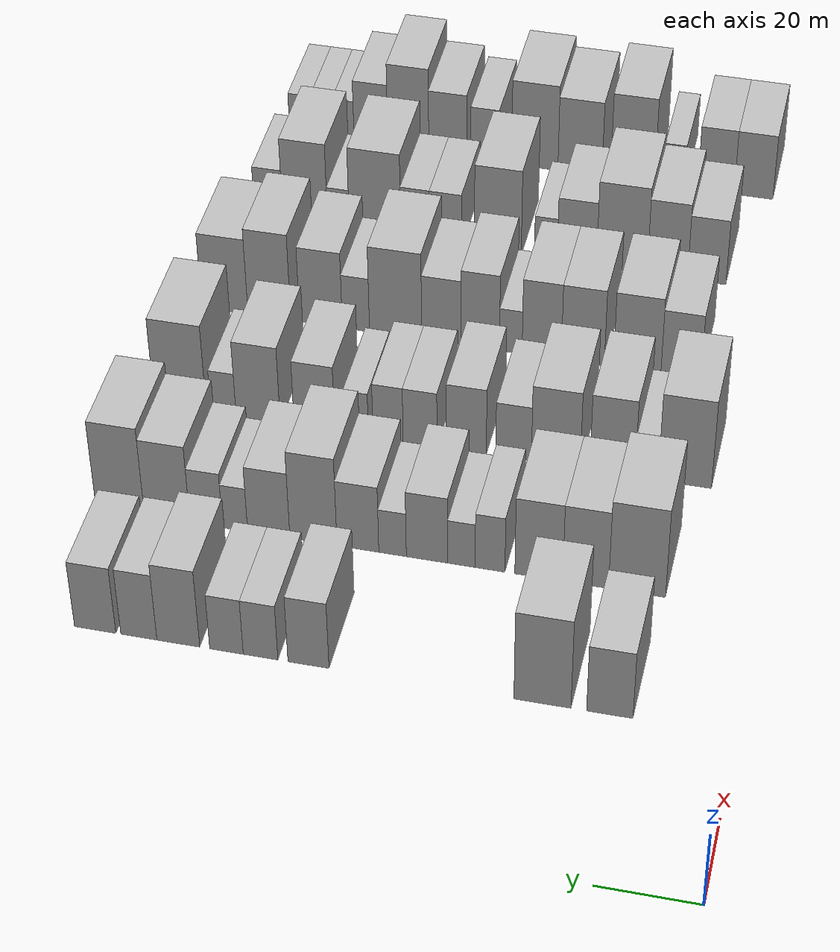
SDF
<sdf version="1.6">
 <world name="default">
  <model name="building_58">
   <static>1</static>
   <pose>50.0000 24.0902 0 0.000000 0.000000 0.000000</pose>
   <link name="link">
    <pose>0 0 9.00 0 0 0</pose>
    <collision name="collision"><geometry><box><size>20.0000 8.8738 18.0000</size></box></geometry></collision>
    <visual name="visual">
     <cast_shadows>0</cast_shadows>
     <geometry><box><size>20.0000 8.8738 18.0000</size></box></geometry>
     <material>
      <script>
       <uri>model://HANNAS_wall/materials/scripts</uri>
       <uri>model://HANNAS_wall/materials/textures</uri>
       <name>vrc/HANNAS_wall</name>
      </script>
     </material>
    </visual>
   </link>
  </model>
  <model name="building_59">
   <static>1</static>
   <pose>50.0000 37.0225 0 0.000000 0.000000 0.000000</pose>
   <link name="link">
    <pose>0 0 12.00 0 0 0</pose>
    <collision name="collision"><geometry><box><size>20.0000 10.9907 24.0000</size></box></geometry></collision>
    <visual name="visual">
     <cast_shadows>0</cast_shadows>
     <geometry><box><size>20.0000 10.9907 24.0000</size></box></geometry>
     <material>
      <script>
       <uri>model://HANNAS_wall/materials/scripts</uri>
       <uri>model://HANNAS_wall/materials/textures</uri>
       <name>vrc/HANNAS_wall</name>
      </script>
     </material>
    </visual>
   </link>
  </model>
  <model name="building_60">
   <static>1</static>
   <pose>50.0000 82.7007 0 0.000000 0.000000 0.000000</pose>
   <link name="link">
    <pose>0 0 9.00 0 0 0</pose>
    <collision name="collision"><geometry><box><size>20.0000 8.1219 18.0000</size></box></geometry></collision>
    <visual name="visual">
     <cast_shadows>0</cast_shadows>
     <geometry><box><size>20.0000 8.1219 18.0000</size></box></geometry>
     <material>
      <script>
       <uri>model://HANNAS_wall/materials/scripts</uri>
       <uri>model://HANNAS_wall/materials/textures</uri>
       <name>vrc/HANNAS_wall</name>
      </script>
     </material>
    </visual>
   </link>
  </model>
  <model name="building_61">
   <static>1</static>
   <pose>50.0000 92.2051 0 0.000000 0.000000 0.000000</pose>
   <link name="link">
    <pose>0 0 7.50 0 0 0</pose>
    <collision name="collision"><geometry><box><size>20.0000 6.8869 15.0000</size></box></geometry></collision>
    <visual name="visual">
     <cast_shadows>0</cast_shadows>
     <geometry><box><size>20.0000 6.8869 15.0000</size></box></geometry>
     <material>
      <script>
       <uri>model://HANNAS_wall/materials/scripts</uri>
       <uri>model://HANNAS_wall/materials/textures</uri>
       <name>vrc/HANNAS_wall</name>
      </script>
     </material>
    </visual>
   </link>
  </model>
  <model name="building_62">
   <static>1</static>
   <pose>50.0000 98.9948 0 0.000000 0.000000 0.000000</pose>
   <link name="link">
    <pose>0 0 7.50 0 0 0</pose>
    <collision name="collision"><geometry><box><size>20.0000 6.6925 15.0000</size></box></geometry></collision>
    <visual name="visual">
     <cast_shadows>0</cast_shadows>
     <geometry><box><size>20.0000 6.6925 15.0000</size></box></geometry>
     <material>
      <script>
       <uri>model://HANNAS_wall/materials/scripts</uri>
       <uri>model://HANNAS_wall/materials/textures</uri>
       <name>vrc/HANNAS_wall</name>
      </script>
     </material>
    </visual>
   </link>
  </model>
  <model name="building_63">
   <static>1</static>
   <pose>50.0000 108.6444 0 0.000000 0.000000 0.000000</pose>
   <link name="link">
    <pose>0 0 10.50 0 0 0</pose>
    <collision name="collision"><geometry><box><size>20.0000 8.6068 21.0000</size></box></geometry></collision>
    <visual name="visual">
     <cast_shadows>0</cast_shadows>
     <geometry><box><size>20.0000 8.6068 21.0000</size></box></geometry>
     <material>
      <script>
       <uri>model://HANNAS_wall/materials/scripts</uri>
       <uri>model://HANNAS_wall/materials/textures</uri>
       <name>vrc/HANNAS_wall</name>
      </script>
     </material>
    </visual>
   </link>
  </model>
  <model name="building_64">
   <static>1</static>
   <pose>50.0000 116.5940 0 0.000000 0.000000 0.000000</pose>
   <link name="link">
    <pose>0 0 9.00 0 0 0</pose>
    <collision name="collision"><geometry><box><size>20.0000 7.2923 18.0000</size></box></geometry></collision>
    <visual name="visual">
     <cast_shadows>0</cast_shadows>
     <geometry><box><size>20.0000 7.2923 18.0000</size></box></geometry>
     <material>
      <script>
       <uri>model://HANNAS_wall/materials/scripts</uri>
       <uri>model://HANNAS_wall/materials/textures</uri>
       <name>vrc/HANNAS_wall</name>
      </script>
     </material>
    </visual>
   </link>
  </model>
  <model name="building_65">
   <static>1</static>
   <pose>50.0000 125.4271 0 0.000000 0.000000 0.000000</pose>
   <link name="link">
    <pose>0 0 9.00 0 0 0</pose>
    <collision name="collision"><geometry><box><size>20.0000 8.3741 18.0000</size></box></geometry></collision>
    <visual name="visual">
     <cast_shadows>0</cast_shadows>
     <geometry><box><size>20.0000 8.3741 18.0000</size></box></geometry>
     <material>
      <script>
       <uri>model://HANNAS_wall/materials/scripts</uri>
       <uri>model://HANNAS_wall/materials/textures</uri>
       <name>vrc/HANNAS_wall</name>
      </script>
     </material>
    </visual>
   </link>
  </model>
  <model name="building_174">
   <static>1</static>
   <pose>82.0000 24.3440 0 0.000000 0.000000 0.000000</pose>
   <link name="link">
    <pose>0 0 12.00 0 0 0</pose>
    <collision name="collision"><geometry><box><size>20.0000 11.3569 24.0000</size></box></geometry></collision>
    <visual name="visual">
     <cast_shadows>0</cast_shadows>
     <geometry><box><size>20.0000 11.3569 24.0000</size></box></geometry>
     <material>
      <script>
       <uri>model://HANNAS_wall/materials/scripts</uri>
       <uri>model://HANNAS_wall/materials/textures</uri>
       <name>vrc/HANNAS_wall</name>
      </script>
     </material>
    </visual>
   </link>
  </model>
  <model name="building_175">
   <static>1</static>
   <pose>82.0000 34.6064 0 0.000000 0.000000 0.000000</pose>
   <link name="link">
    <pose>0 0 10.50 0 0 0</pose>
    <collision name="collision"><geometry><box><size>20.0000 9.1680 21.0000</size></box></geometry></collision>
    <visual name="visual">
     <cast_shadows>0</cast_shadows>
     <geometry><box><size>20.0000 9.1680 21.0000</size></box></geometry>
     <material>
      <script>
       <uri>model://HANNAS_wall/materials/scripts</uri>
       <uri>model://HANNAS_wall/materials/textures</uri>
       <name>vrc/HANNAS_wall</name>
      </script>
     </material>
    </visual>
   </link>
  </model>
  <model name="building_176">
   <static>1</static>
   <pose>82.0000 44.0132 0 0.000000 0.000000 0.000000</pose>
   <link name="link">
    <pose>0 0 10.50 0 0 0</pose>
    <collision name="collision"><geometry><box><size>20.0000 9.6455 21.0000</size></box></geometry></collision>
    <visual name="visual">
     <cast_shadows>0</cast_shadows>
     <geometry><box><size>20.0000 9.6455 21.0000</size></box></geometry>
     <material>
      <script>
       <uri>model://HANNAS_wall/materials/scripts</uri>
       <uri>model://HANNAS_wall/materials/textures</uri>
       <name>vrc/HANNAS_wall</name>
      </script>
     </material>
    </visual>
   </link>
  </model>
  <model name="building_177">
   <static>1</static>
   <pose>82.0000 53.8395 0 0.000000 0.000000 0.000000</pose>
   <link name="link">
    <pose>0 0 7.50 0 0 0</pose>
    <collision name="collision"><geometry><box><size>20.0000 6.0071 15.0000</size></box></geometry></collision>
    <visual name="visual">
     <cast_shadows>0</cast_shadows>
     <geometry><box><size>20.0000 6.0071 15.0000</size></box></geometry>
     <material>
      <script>
       <uri>model://HANNAS_wall/materials/scripts</uri>
       <uri>model://HANNAS_wall/materials/textures</uri>
       <name>vrc/HANNAS_wall</name>
      </script>
     </material>
    </visual>
   </link>
  </model>
  <model name="building_178">
   <static>1</static>
   <pose>82.0000 59.6464 0 0.000000 0.000000 0.000000</pose>
   <link name="link">
    <pose>0 0 6.00 0 0 0</pose>
    <collision name="collision"><geometry><box><size>20.0000 5.6066 12.0000</size></box></geometry></collision>
    <visual name="visual">
     <cast_shadows>0</cast_shadows>
     <geometry><box><size>20.0000 5.6066 12.0000</size></box></geometry>
     <material>
      <script>
       <uri>model://HANNAS_wall/materials/scripts</uri>
       <uri>model://HANNAS_wall/materials/textures</uri>
       <name>vrc/HANNAS_wall</name>
      </script>
     </material>
    </visual>
   </link>
  </model>
  <model name="building_179">
   <static>1</static>
   <pose>82.0000 66.6691 0 0.000000 0.000000 0.000000</pose>
   <link name="link">
    <pose>0 0 9.00 0 0 0</pose>
    <collision name="collision"><geometry><box><size>20.0000 8.4389 18.0000</size></box></geometry></collision>
    <visual name="visual">
     <cast_shadows>0</cast_shadows>
     <geometry><box><size>20.0000 8.4389 18.0000</size></box></geometry>
     <material>
      <script>
       <uri>model://HANNAS_wall/materials/scripts</uri>
       <uri>model://HANNAS_wall/materials/textures</uri>
       <name>vrc/HANNAS_wall</name>
      </script>
     </material>
    </visual>
   </link>
  </model>
  <model name="building_180">
   <static>1</static>
   <pose>82.0000 73.7077 0 0.000000 0.000000 0.000000</pose>
   <link name="link">
    <pose>0 0 6.00 0 0 0</pose>
    <collision name="collision"><geometry><box><size>20.0000 5.6383 12.0000</size></box></geometry></collision>
    <visual name="visual">
     <cast_shadows>0</cast_shadows>
     <geometry><box><size>20.0000 5.6383 12.0000</size></box></geometry>
     <material>
      <script>
       <uri>model://HANNAS_wall/materials/scripts</uri>
       <uri>model://HANNAS_wall/materials/textures</uri>
       <name>vrc/HANNAS_wall</name>
      </script>
     </material>
    </visual>
   </link>
  </model>
  <model name="building_181">
   <static>1</static>
   <pose>82.0000 80.8199 0 0.000000 0.000000 0.000000</pose>
   <link name="link">
    <pose>0 0 9.00 0 0 0</pose>
    <collision name="collision"><geometry><box><size>20.0000 8.5862 18.0000</size></box></geometry></collision>
    <visual name="visual">
     <cast_shadows>0</cast_shadows>
     <geometry><box><size>20.0000 8.5862 18.0000</size></box></geometry>
     <material>
      <script>
       <uri>model://HANNAS_wall/materials/scripts</uri>
       <uri>model://HANNAS_wall/materials/textures</uri>
       <name>vrc/HANNAS_wall</name>
      </script>
     </material>
    </visual>
   </link>
  </model>
  <model name="building_182">
   <static>1</static>
   <pose>82.0000 89.9859 0 0.000000 0.000000 0.000000</pose>
   <link name="link">
    <pose>0 0 12.00 0 0 0</pose>
    <collision name="collision"><geometry><box><size>20.0000 9.7458 24.0000</size></box></geometry></collision>
    <visual name="visual">
     <cast_shadows>0</cast_shadows>
     <geometry><box><size>20.0000 9.7458 24.0000</size></box></geometry>
     <material>
      <script>
       <uri>model://HANNAS_wall/materials/scripts</uri>
       <uri>model://HANNAS_wall/materials/textures</uri>
       <name>vrc/HANNAS_wall</name>
      </script>
     </material>
    </visual>
   </link>
  </model>
  <model name="building_183">
   <static>1</static>
   <pose>82.0000 99.2444 0 0.000000 0.000000 0.000000</pose>
   <link name="link">
    <pose>0 0 9.00 0 0 0</pose>
    <collision name="collision"><geometry><box><size>20.0000 8.7712 18.0000</size></box></geometry></collision>
    <visual name="visual">
     <cast_shadows>0</cast_shadows>
     <geometry><box><size>20.0000 8.7712 18.0000</size></box></geometry>
     <material>
      <script>
       <uri>model://HANNAS_wall/materials/scripts</uri>
       <uri>model://HANNAS_wall/materials/textures</uri>
       <name>vrc/HANNAS_wall</name>
      </script>
     </material>
    </visual>
   </link>
  </model>
  <model name="building_184">
   <static>1</static>
   <pose>82.0000 106.2333 0 0.000000 0.000000 0.000000</pose>
   <link name="link">
    <pose>0 0 6.00 0 0 0</pose>
    <collision name="collision"><geometry><box><size>20.0000 5.2065 12.0000</size></box></geometry></collision>
    <visual name="visual">
     <cast_shadows>0</cast_shadows>
     <geometry><box><size>20.0000 5.2065 12.0000</size></box></geometry>
     <material>
      <script>
       <uri>model://HANNAS_wall/materials/scripts</uri>
       <uri>model://HANNAS_wall/materials/textures</uri>
       <name>vrc/HANNAS_wall</name>
      </script>
     </material>
    </visual>
   </link>
  </model>
  <model name="building_185">
   <static>1</static>
   <pose>82.0000 112.2573 0 0.000000 0.000000 0.000000</pose>
   <link name="link">
    <pose>0 0 7.50 0 0 0</pose>
    <collision name="collision"><geometry><box><size>20.0000 6.8416 15.0000</size></box></geometry></collision>
    <visual name="visual">
     <cast_shadows>0</cast_shadows>
     <geometry><box><size>20.0000 6.8416 15.0000</size></box></geometry>
     <material>
      <script>
       <uri>model://HANNAS_wall/materials/scripts</uri>
       <uri>model://HANNAS_wall/materials/textures</uri>
       <name>vrc/HANNAS_wall</name>
      </script>
     </material>
    </visual>
   </link>
  </model>
  <model name="building_186">
   <static>1</static>
   <pose>82.0000 120.4672 0 0.000000 0.000000 0.000000</pose>
   <link name="link">
    <pose>0 0 10.50 0 0 0</pose>
    <collision name="collision"><geometry><box><size>20.0000 9.5781 21.0000</size></box></geometry></collision>
    <visual name="visual">
     <cast_shadows>0</cast_shadows>
     <geometry><box><size>20.0000 9.5781 21.0000</size></box></geometry>
     <material>
      <script>
       <uri>model://HANNAS_wall/materials/scripts</uri>
       <uri>model://HANNAS_wall/materials/textures</uri>
       <name>vrc/HANNAS_wall</name>
      </script>
     </material>
    </visual>
   </link>
  </model>
  <model name="building_187">
   <static>1</static>
   <pose>82.0000 130.3762 0 0.000000 0.000000 0.000000</pose>
   <link name="link">
    <pose>0 0 12.00 0 0 0</pose>
    <collision name="collision"><geometry><box><size>20.0000 10.2400 24.0000</size></box></geometry></collision>
    <visual name="visual">
     <cast_shadows>0</cast_shadows>
     <geometry><box><size>20.0000 10.2400 24.0000</size></box></geometry>
     <material>
      <script>
       <uri>model://HANNAS_wall/materials/scripts</uri>
       <uri>model://HANNAS_wall/materials/textures</uri>
       <name>vrc/HANNAS_wall</name>
      </script>
     </material>
    </visual>
   </link>
  </model>
  <model name="building_295">
   <static>1</static>
   <pose>114.0000 19.8842 0 0.000000 0.000000 0.000000</pose>
   <link name="link">
    <pose>0 0 12.00 0 0 0</pose>
    <collision name="collision"><geometry><box><size>20.0000 11.0439 24.0000</size></box></geometry></collision>
    <visual name="visual">
     <cast_shadows>0</cast_shadows>
     <geometry><box><size>20.0000 11.0439 24.0000</size></box></geometry>
     <material>
      <script>
       <uri>model://HANNAS_wall/materials/scripts</uri>
       <uri>model://HANNAS_wall/materials/textures</uri>
       <name>vrc/HANNAS_wall</name>
      </script>
     </material>
    </visual>
   </link>
  </model>
  <model name="building_296">
   <static>1</static>
   <pose>114.0000 27.8143 0 0.000000 0.000000 0.000000</pose>
   <link name="link">
    <pose>0 0 6.00 0 0 0</pose>
    <collision name="collision"><geometry><box><size>20.0000 4.8162 12.0000</size></box></geometry></collision>
    <visual name="visual">
     <cast_shadows>0</cast_shadows>
     <geometry><box><size>20.0000 4.8162 12.0000</size></box></geometry>
     <material>
      <script>
       <uri>model://HANNAS_wall/materials/scripts</uri>
       <uri>model://HANNAS_wall/materials/textures</uri>
       <name>vrc/HANNAS_wall</name>
      </script>
     </material>
    </visual>
   </link>
  </model>
  <model name="building_297">
   <static>1</static>
   <pose>114.0000 34.9169 0 0.000000 0.000000 0.000000</pose>
   <link name="link">
    <pose>0 0 10.50 0 0 0</pose>
    <collision name="collision"><geometry><box><size>20.0000 9.3890 21.0000</size></box></geometry></collision>
    <visual name="visual">
     <cast_shadows>0</cast_shadows>
     <geometry><box><size>20.0000 9.3890 21.0000</size></box></geometry>
     <material>
      <script>
       <uri>model://HANNAS_wall/materials/scripts</uri>
       <uri>model://HANNAS_wall/materials/textures</uri>
       <name>vrc/HANNAS_wall</name>
      </script>
     </material>
    </visual>
   </link>
  </model>
  <model name="building_298">
   <static>1</static>
   <pose>114.0000 46.7356 0 0.000000 0.000000 0.000000</pose>
   <link name="link">
    <pose>0 0 10.50 0 0 0</pose>
    <collision name="collision"><geometry><box><size>20.0000 10.2484 21.0000</size></box></geometry></collision>
    <visual name="visual">
     <cast_shadows>0</cast_shadows>
     <geometry><box><size>20.0000 10.2484 21.0000</size></box></geometry>
     <material>
      <script>
       <uri>model://HANNAS_wall/materials/scripts</uri>
       <uri>model://HANNAS_wall/materials/textures</uri>
       <name>vrc/HANNAS_wall</name>
      </script>
     </material>
    </visual>
   </link>
  </model>
  <model name="building_299">
   <static>1</static>
   <pose>114.0000 55.5997 0 0.000000 0.000000 0.000000</pose>
   <link name="link">
    <pose>0 0 7.50 0 0 0</pose>
    <collision name="collision"><geometry><box><size>20.0000 7.4797 15.0000</size></box></geometry></collision>
    <visual name="visual">
     <cast_shadows>0</cast_shadows>
     <geometry><box><size>20.0000 7.4797 15.0000</size></box></geometry>
     <material>
      <script>
       <uri>model://HANNAS_wall/materials/scripts</uri>
       <uri>model://HANNAS_wall/materials/textures</uri>
       <name>vrc/HANNAS_wall</name>
      </script>
     </material>
    </visual>
   </link>
  </model>
  <model name="building_300">
   <static>1</static>
   <pose>114.0000 65.5620 0 0.000000 0.000000 0.000000</pose>
   <link name="link">
    <pose>0 0 9.00 0 0 0</pose>
    <collision name="collision"><geometry><box><size>20.0000 8.4450 18.0000</size></box></geometry></collision>
    <visual name="visual">
     <cast_shadows>0</cast_shadows>
     <geometry><box><size>20.0000 8.4450 18.0000</size></box></geometry>
     <material>
      <script>
       <uri>model://HANNAS_wall/materials/scripts</uri>
       <uri>model://HANNAS_wall/materials/textures</uri>
       <name>vrc/HANNAS_wall</name>
      </script>
     </material>
    </visual>
   </link>
  </model>
  <model name="building_301">
   <static>1</static>
   <pose>114.0000 75.3989 0 0.000000 0.000000 0.000000</pose>
   <link name="link">
    <pose>0 0 7.50 0 0 0</pose>
    <collision name="collision"><geometry><box><size>20.0000 7.2289 15.0000</size></box></geometry></collision>
    <visual name="visual">
     <cast_shadows>0</cast_shadows>
     <geometry><box><size>20.0000 7.2289 15.0000</size></box></geometry>
     <material>
      <script>
       <uri>model://HANNAS_wall/materials/scripts</uri>
       <uri>model://HANNAS_wall/materials/textures</uri>
       <name>vrc/HANNAS_wall</name>
      </script>
     </material>
    </visual>
   </link>
  </model>
  <model name="building_302">
   <static>1</static>
   <pose>114.0000 82.2269 0 0.000000 0.000000 0.000000</pose>
   <link name="link">
    <pose>0 0 7.50 0 0 0</pose>
    <collision name="collision"><geometry><box><size>20.0000 6.4271 15.0000</size></box></geometry></collision>
    <visual name="visual">
     <cast_shadows>0</cast_shadows>
     <geometry><box><size>20.0000 6.4271 15.0000</size></box></geometry>
     <material>
      <script>
       <uri>model://HANNAS_wall/materials/scripts</uri>
       <uri>model://HANNAS_wall/materials/textures</uri>
       <name>vrc/HANNAS_wall</name>
      </script>
     </material>
    </visual>
   </link>
  </model>
  <model name="building_303">
   <static>1</static>
   <pose>114.0000 89.0508 0 0.000000 0.000000 0.000000</pose>
   <link name="link">
    <pose>0 0 6.00 0 0 0</pose>
    <collision name="collision"><geometry><box><size>20.0000 5.2206 12.0000</size></box></geometry></collision>
    <visual name="visual">
     <cast_shadows>0</cast_shadows>
     <geometry><box><size>20.0000 5.2206 12.0000</size></box></geometry>
     <material>
      <script>
       <uri>model://HANNAS_wall/materials/scripts</uri>
       <uri>model://HANNAS_wall/materials/textures</uri>
       <name>vrc/HANNAS_wall</name>
      </script>
     </material>
    </visual>
   </link>
  </model>
  <model name="building_304">
   <static>1</static>
   <pose>114.0000 98.0359 0 0.000000 0.000000 0.000000</pose>
   <link name="link">
    <pose>0 0 9.00 0 0 0</pose>
    <collision name="collision"><geometry><box><size>20.0000 8.7498 18.0000</size></box></geometry></collision>
    <visual name="visual">
     <cast_shadows>0</cast_shadows>
     <geometry><box><size>20.0000 8.7498 18.0000</size></box></geometry>
     <material>
      <script>
       <uri>model://HANNAS_wall/materials/scripts</uri>
       <uri>model://HANNAS_wall/materials/textures</uri>
       <name>vrc/HANNAS_wall</name>
      </script>
     </material>
    </visual>
   </link>
  </model>
  <model name="building_305">
   <static>1</static>
   <pose>114.0000 110.1996 0 0.000000 0.000000 0.000000</pose>
   <link name="link">
    <pose>0 0 10.50 0 0 0</pose>
    <collision name="collision"><geometry><box><size>20.0000 9.5776 21.0000</size></box></geometry></collision>
    <visual name="visual">
     <cast_shadows>0</cast_shadows>
     <geometry><box><size>20.0000 9.5776 21.0000</size></box></geometry>
     <material>
      <script>
       <uri>model://HANNAS_wall/materials/scripts</uri>
       <uri>model://HANNAS_wall/materials/textures</uri>
       <name>vrc/HANNAS_wall</name>
      </script>
     </material>
    </visual>
   </link>
  </model>
  <model name="building_306">
   <static>1</static>
   <pose>114.0000 117.7219 0 0.000000 0.000000 0.000000</pose>
   <link name="link">
    <pose>0 0 6.00 0 0 0</pose>
    <collision name="collision"><geometry><box><size>20.0000 5.4670 12.0000</size></box></geometry></collision>
    <visual name="visual">
     <cast_shadows>0</cast_shadows>
     <geometry><box><size>20.0000 5.4670 12.0000</size></box></geometry>
     <material>
      <script>
       <uri>model://HANNAS_wall/materials/scripts</uri>
       <uri>model://HANNAS_wall/materials/textures</uri>
       <name>vrc/HANNAS_wall</name>
      </script>
     </material>
    </visual>
   </link>
  </model>
  <model name="building_307">
   <static>1</static>
   <pose>114.0000 127.1397 0 0.000000 0.000000 0.000000</pose>
   <link name="link">
    <pose>0 0 12.00 0 0 0</pose>
    <collision name="collision"><geometry><box><size>20.0000 11.3685 24.0000</size></box></geometry></collision>
    <visual name="visual">
     <cast_shadows>0</cast_shadows>
     <geometry><box><size>20.0000 11.3685 24.0000</size></box></geometry>
     <material>
      <script>
       <uri>model://HANNAS_wall/materials/scripts</uri>
       <uri>model://HANNAS_wall/materials/textures</uri>
       <name>vrc/HANNAS_wall</name>
      </script>
     </material>
    </visual>
   </link>
  </model>
  <model name="building_409">
   <static>1</static>
   <pose>146.0000 25.7599 0 0.000000 0.000000 0.000000</pose>
   <link name="link">
    <pose>0 0 9.00 0 0 0</pose>
    <collision name="collision"><geometry><box><size>20.0000 8.6077 18.0000</size></box></geometry></collision>
    <visual name="visual">
     <cast_shadows>0</cast_shadows>
     <geometry><box><size>20.0000 8.6077 18.0000</size></box></geometry>
     <material>
      <script>
       <uri>model://HANNAS_wall/materials/scripts</uri>
       <uri>model://HANNAS_wall/materials/textures</uri>
       <name>vrc/HANNAS_wall</name>
      </script>
     </material>
    </visual>
   </link>
  </model>
  <model name="building_410">
   <static>1</static>
   <pose>146.0000 35.1900 0 0.000000 0.000000 0.000000</pose>
   <link name="link">
    <pose>0 0 10.50 0 0 0</pose>
    <collision name="collision"><geometry><box><size>20.0000 10.2526 21.0000</size></box></geometry></collision>
    <visual name="visual">
     <cast_shadows>0</cast_shadows>
     <geometry><box><size>20.0000 10.2526 21.0000</size></box></geometry>
     <material>
      <script>
       <uri>model://HANNAS_wall/materials/scripts</uri>
       <uri>model://HANNAS_wall/materials/textures</uri>
       <name>vrc/HANNAS_wall</name>
      </script>
     </material>
    </visual>
   </link>
  </model>
  <model name="building_411">
   <static>1</static>
   <pose>146.0000 46.9946 0 0.000000 0.000000 0.000000</pose>
   <link name="link">
    <pose>0 0 10.50 0 0 0</pose>
    <collision name="collision"><geometry><box><size>20.0000 9.3565 21.0000</size></box></geometry></collision>
    <visual name="visual">
     <cast_shadows>0</cast_shadows>
     <geometry><box><size>20.0000 9.3565 21.0000</size></box></geometry>
     <material>
      <script>
       <uri>model://HANNAS_wall/materials/scripts</uri>
       <uri>model://HANNAS_wall/materials/textures</uri>
       <name>vrc/HANNAS_wall</name>
      </script>
     </material>
    </visual>
   </link>
  </model>
  <model name="building_412">
   <static>1</static>
   <pose>146.0000 55.9600 0 0.000000 0.000000 0.000000</pose>
   <link name="link">
    <pose>0 0 10.50 0 0 0</pose>
    <collision name="collision"><geometry><box><size>20.0000 8.5743 21.0000</size></box></geometry></collision>
    <visual name="visual">
     <cast_shadows>0</cast_shadows>
     <geometry><box><size>20.0000 8.5743 21.0000</size></box></geometry>
     <material>
      <script>
       <uri>model://HANNAS_wall/materials/scripts</uri>
       <uri>model://HANNAS_wall/materials/textures</uri>
       <name>vrc/HANNAS_wall</name>
      </script>
     </material>
    </visual>
   </link>
  </model>
  <model name="building_413">
   <static>1</static>
   <pose>146.0000 62.7259 0 0.000000 0.000000 0.000000</pose>
   <link name="link">
    <pose>0 0 6.00 0 0 0</pose>
    <collision name="collision"><geometry><box><size>20.0000 4.9575 12.0000</size></box></geometry></collision>
    <visual name="visual">
     <cast_shadows>0</cast_shadows>
     <geometry><box><size>20.0000 4.9575 12.0000</size></box></geometry>
     <material>
      <script>
       <uri>model://HANNAS_wall/materials/scripts</uri>
       <uri>model://HANNAS_wall/materials/textures</uri>
       <name>vrc/HANNAS_wall</name>
      </script>
     </material>
    </visual>
   </link>
  </model>
  <model name="building_414">
   <static>1</static>
   <pose>146.0000 69.4412 0 0.000000 0.000000 0.000000</pose>
   <link name="link">
    <pose>0 0 10.50 0 0 0</pose>
    <collision name="collision"><geometry><box><size>20.0000 8.4731 21.0000</size></box></geometry></collision>
    <visual name="visual">
     <cast_shadows>0</cast_shadows>
     <geometry><box><size>20.0000 8.4731 21.0000</size></box></geometry>
     <material>
      <script>
       <uri>model://HANNAS_wall/materials/scripts</uri>
       <uri>model://HANNAS_wall/materials/textures</uri>
       <name>vrc/HANNAS_wall</name>
      </script>
     </material>
    </visual>
   </link>
  </model>
  <model name="building_415">
   <static>1</static>
   <pose>146.0000 78.0120 0 0.000000 0.000000 0.000000</pose>
   <link name="link">
    <pose>0 0 9.00 0 0 0</pose>
    <collision name="collision"><geometry><box><size>20.0000 8.6684 18.0000</size></box></geometry></collision>
    <visual name="visual">
     <cast_shadows>0</cast_shadows>
     <geometry><box><size>20.0000 8.6684 18.0000</size></box></geometry>
     <material>
      <script>
       <uri>model://HANNAS_wall/materials/scripts</uri>
       <uri>model://HANNAS_wall/materials/textures</uri>
       <name>vrc/HANNAS_wall</name>
      </script>
     </material>
    </visual>
   </link>
  </model>
  <model name="building_416">
   <static>1</static>
   <pose>146.0000 88.1563 0 0.000000 0.000000 0.000000</pose>
   <link name="link">
    <pose>0 0 12.00 0 0 0</pose>
    <collision name="collision"><geometry><box><size>20.0000 11.6202 24.0000</size></box></geometry></collision>
    <visual name="visual">
     <cast_shadows>0</cast_shadows>
     <geometry><box><size>20.0000 11.6202 24.0000</size></box></geometry>
     <material>
      <script>
       <uri>model://HANNAS_wall/materials/scripts</uri>
       <uri>model://HANNAS_wall/materials/textures</uri>
       <name>vrc/HANNAS_wall</name>
      </script>
     </material>
    </visual>
   </link>
  </model>
  <model name="building_417">
   <static>1</static>
   <pose>146.0000 97.0015 0 0.000000 0.000000 0.000000</pose>
   <link name="link">
    <pose>0 0 7.50 0 0 0</pose>
    <collision name="collision"><geometry><box><size>20.0000 6.0702 15.0000</size></box></geometry></collision>
    <visual name="visual">
     <cast_shadows>0</cast_shadows>
     <geometry><box><size>20.0000 6.0702 15.0000</size></box></geometry>
     <material>
      <script>
       <uri>model://HANNAS_wall/materials/scripts</uri>
       <uri>model://HANNAS_wall/materials/textures</uri>
       <name>vrc/HANNAS_wall</name>
      </script>
     </material>
    </visual>
   </link>
  </model>
  <model name="building_418">
   <static>1</static>
   <pose>146.0000 104.8244 0 0.000000 0.000000 0.000000</pose>
   <link name="link">
    <pose>0 0 10.50 0 0 0</pose>
    <collision name="collision"><geometry><box><size>20.0000 9.5756 21.0000</size></box></geometry></collision>
    <visual name="visual">
     <cast_shadows>0</cast_shadows>
     <geometry><box><size>20.0000 9.5756 21.0000</size></box></geometry>
     <material>
      <script>
       <uri>model://HANNAS_wall/materials/scripts</uri>
       <uri>model://HANNAS_wall/materials/textures</uri>
       <name>vrc/HANNAS_wall</name>
      </script>
     </material>
    </visual>
   </link>
  </model>
  <model name="building_419">
   <static>1</static>
   <pose>146.0000 116.4453 0 0.000000 0.000000 0.000000</pose>
   <link name="link">
    <pose>0 0 12.00 0 0 0</pose>
    <collision name="collision"><geometry><box><size>20.0000 9.6662 24.0000</size></box></geometry></collision>
    <visual name="visual">
     <cast_shadows>0</cast_shadows>
     <geometry><box><size>20.0000 9.6662 24.0000</size></box></geometry>
     <material>
      <script>
       <uri>model://HANNAS_wall/materials/scripts</uri>
       <uri>model://HANNAS_wall/materials/textures</uri>
       <name>vrc/HANNAS_wall</name>
      </script>
     </material>
    </visual>
   </link>
  </model>
  <model name="building_420">
   <static>1</static>
   <pose>146.0000 126.5057 0 0.000000 0.000000 0.000000</pose>
   <link name="link">
    <pose>0 0 10.50 0 0 0</pose>
    <collision name="collision"><geometry><box><size>20.0000 10.4546 21.0000</size></box></geometry></collision>
    <visual name="visual">
     <cast_shadows>0</cast_shadows>
     <geometry><box><size>20.0000 10.4546 21.0000</size></box></geometry>
     <material>
      <script>
       <uri>model://HANNAS_wall/materials/scripts</uri>
       <uri>model://HANNAS_wall/materials/textures</uri>
       <name>vrc/HANNAS_wall</name>
      </script>
     </material>
    </visual>
   </link>
  </model>
  <model name="building_532">
   <static>1</static>
   <pose>178.0000 25.0534 0 0.000000 0.000000 0.000000</pose>
   <link name="link">
    <pose>0 0 9.00 0 0 0</pose>
    <collision name="collision"><geometry><box><size>20.0000 8.6079 18.0000</size></box></geometry></collision>
    <visual name="visual">
     <cast_shadows>0</cast_shadows>
     <geometry><box><size>20.0000 8.6079 18.0000</size></box></geometry>
     <material>
      <script>
       <uri>model://HANNAS_wall/materials/scripts</uri>
       <uri>model://HANNAS_wall/materials/textures</uri>
       <name>vrc/HANNAS_wall</name>
      </script>
     </material>
    </visual>
   </link>
  </model>
  <model name="building_533">
   <static>1</static>
   <pose>178.0000 33.8740 0 0.000000 0.000000 0.000000</pose>
   <link name="link">
    <pose>0 0 10.50 0 0 0</pose>
    <collision name="collision"><geometry><box><size>20.0000 9.0332 21.0000</size></box></geometry></collision>
    <visual name="visual">
     <cast_shadows>0</cast_shadows>
     <geometry><box><size>20.0000 9.0332 21.0000</size></box></geometry>
     <material>
      <script>
       <uri>model://HANNAS_wall/materials/scripts</uri>
       <uri>model://HANNAS_wall/materials/textures</uri>
       <name>vrc/HANNAS_wall</name>
      </script>
     </material>
    </visual>
   </link>
  </model>
  <model name="building_534">
   <static>1</static>
   <pose>178.0000 44.0965 0 0.000000 0.000000 0.000000</pose>
   <link name="link">
    <pose>0 0 12.00 0 0 0</pose>
    <collision name="collision"><geometry><box><size>20.0000 11.4119 24.0000</size></box></geometry></collision>
    <visual name="visual">
     <cast_shadows>0</cast_shadows>
     <geometry><box><size>20.0000 11.4119 24.0000</size></box></geometry>
     <material>
      <script>
       <uri>model://HANNAS_wall/materials/scripts</uri>
       <uri>model://HANNAS_wall/materials/textures</uri>
       <name>vrc/HANNAS_wall</name>
      </script>
     </material>
    </visual>
   </link>
  </model>
  <model name="building_535">
   <static>1</static>
   <pose>178.0000 54.2467 0 0.000000 0.000000 0.000000</pose>
   <link name="link">
    <pose>0 0 9.00 0 0 0</pose>
    <collision name="collision"><geometry><box><size>20.0000 8.8883 18.0000</size></box></geometry></collision>
    <visual name="visual">
     <cast_shadows>0</cast_shadows>
     <geometry><box><size>20.0000 8.8883 18.0000</size></box></geometry>
     <material>
      <script>
       <uri>model://HANNAS_wall/materials/scripts</uri>
       <uri>model://HANNAS_wall/materials/textures</uri>
       <name>vrc/HANNAS_wall</name>
      </script>
     </material>
    </visual>
   </link>
  </model>
  <model name="building_536">
   <static>1</static>
   <pose>178.0000 61.2863 0 0.000000 0.000000 0.000000</pose>
   <link name="link">
    <pose>0 0 6.00 0 0 0</pose>
    <collision name="collision"><geometry><box><size>20.0000 5.1911 12.0000</size></box></geometry></collision>
    <visual name="visual">
     <cast_shadows>0</cast_shadows>
     <geometry><box><size>20.0000 5.1911 12.0000</size></box></geometry>
     <material>
      <script>
       <uri>model://HANNAS_wall/materials/scripts</uri>
       <uri>model://HANNAS_wall/materials/textures</uri>
       <name>vrc/HANNAS_wall</name>
      </script>
     </material>
    </visual>
   </link>
  </model>
  <model name="building_537">
   <static>1</static>
   <pose>178.0000 72.2185 0 0.000000 0.000000 0.000000</pose>
   <link name="link">
    <pose>0 0 12.00 0 0 0</pose>
    <collision name="collision"><geometry><box><size>20.0000 10.6733 24.0000</size></box></geometry></collision>
    <visual name="visual">
     <cast_shadows>0</cast_shadows>
     <geometry><box><size>20.0000 10.6733 24.0000</size></box></geometry>
     <material>
      <script>
       <uri>model://HANNAS_wall/materials/scripts</uri>
       <uri>model://HANNAS_wall/materials/textures</uri>
       <name>vrc/HANNAS_wall</name>
      </script>
     </material>
    </visual>
   </link>
  </model>
  <model name="building_538">
   <static>1</static>
   <pose>178.0000 84.2112 0 0.000000 0.000000 0.000000</pose>
   <link name="link">
    <pose>0 0 7.50 0 0 0</pose>
    <collision name="collision"><geometry><box><size>20.0000 7.3121 15.0000</size></box></geometry></collision>
    <visual name="visual">
     <cast_shadows>0</cast_shadows>
     <geometry><box><size>20.0000 7.3121 15.0000</size></box></geometry>
     <material>
      <script>
       <uri>model://HANNAS_wall/materials/scripts</uri>
       <uri>model://HANNAS_wall/materials/textures</uri>
       <name>vrc/HANNAS_wall</name>
      </script>
     </material>
    </visual>
   </link>
  </model>
  <model name="building_539">
   <static>1</static>
   <pose>178.0000 91.1799 0 0.000000 0.000000 0.000000</pose>
   <link name="link">
    <pose>0 0 7.50 0 0 0</pose>
    <collision name="collision"><geometry><box><size>20.0000 6.6253 15.0000</size></box></geometry></collision>
    <visual name="visual">
     <cast_shadows>0</cast_shadows>
     <geometry><box><size>20.0000 6.6253 15.0000</size></box></geometry>
     <material>
      <script>
       <uri>model://HANNAS_wall/materials/scripts</uri>
       <uri>model://HANNAS_wall/materials/textures</uri>
       <name>vrc/HANNAS_wall</name>
      </script>
     </material>
    </visual>
   </link>
  </model>
  <model name="building_540">
   <static>1</static>
   <pose>178.0000 100.4415 0 0.000000 0.000000 0.000000</pose>
   <link name="link">
    <pose>0 0 12.00 0 0 0</pose>
    <collision name="collision"><geometry><box><size>20.0000 11.8978 24.0000</size></box></geometry></collision>
    <visual name="visual">
     <cast_shadows>0</cast_shadows>
     <geometry><box><size>20.0000 11.8978 24.0000</size></box></geometry>
     <material>
      <script>
       <uri>model://HANNAS_wall/materials/scripts</uri>
       <uri>model://HANNAS_wall/materials/textures</uri>
       <name>vrc/HANNAS_wall</name>
      </script>
     </material>
    </visual>
   </link>
  </model>
  <model name="building_541">
   <static>1</static>
   <pose>178.0000 108.9193 0 0.000000 0.000000 0.000000</pose>
   <link name="link">
    <pose>0 0 6.00 0 0 0</pose>
    <collision name="collision"><geometry><box><size>20.0000 5.0578 12.0000</size></box></geometry></collision>
    <visual name="visual">
     <cast_shadows>0</cast_shadows>
     <geometry><box><size>20.0000 5.0578 12.0000</size></box></geometry>
     <material>
      <script>
       <uri>model://HANNAS_wall/materials/scripts</uri>
       <uri>model://HANNAS_wall/materials/textures</uri>
       <name>vrc/HANNAS_wall</name>
      </script>
     </material>
    </visual>
   </link>
  </model>
  <model name="building_542">
   <static>1</static>
   <pose>178.0000 116.6753 0 0.000000 0.000000 0.000000</pose>
   <link name="link">
    <pose>0 0 12.00 0 0 0</pose>
    <collision name="collision"><geometry><box><size>20.0000 10.4543 24.0000</size></box></geometry></collision>
    <visual name="visual">
     <cast_shadows>0</cast_shadows>
     <geometry><box><size>20.0000 10.4543 24.0000</size></box></geometry>
     <material>
      <script>
       <uri>model://HANNAS_wall/materials/scripts</uri>
       <uri>model://HANNAS_wall/materials/textures</uri>
       <name>vrc/HANNAS_wall</name>
      </script>
     </material>
    </visual>
   </link>
  </model>
  <model name="building_543">
   <static>1</static>
   <pose>178.0000 125.2130 0 0.000000 0.000000 0.000000</pose>
   <link name="link">
    <pose>0 0 7.50 0 0 0</pose>
    <collision name="collision"><geometry><box><size>20.0000 6.6209 15.0000</size></box></geometry></collision>
    <visual name="visual">
     <cast_shadows>0</cast_shadows>
     <geometry><box><size>20.0000 6.6209 15.0000</size></box></geometry>
     <material>
      <script>
       <uri>model://HANNAS_wall/materials/scripts</uri>
       <uri>model://HANNAS_wall/materials/textures</uri>
       <name>vrc/HANNAS_wall</name>
      </script>
     </material>
    </visual>
   </link>
  </model>
  <model name="building_657">
   <static>1</static>
   <pose>210.0000 19.0712 0 0.000000 0.000000 0.000000</pose>
   <link name="link">
    <pose>0 0 9.00 0 0 0</pose>
    <collision name="collision"><geometry><box><size>20.0000 8.9573 18.0000</size></box></geometry></collision>
    <visual name="visual">
     <cast_shadows>0</cast_shadows>
     <geometry><box><size>20.0000 8.9573 18.0000</size></box></geometry>
     <material>
      <script>
       <uri>model://HANNAS_wall/materials/scripts</uri>
       <uri>model://HANNAS_wall/materials/textures</uri>
       <name>vrc/HANNAS_wall</name>
      </script>
     </material>
    </visual>
   </link>
  </model>
  <model name="building_658">
   <static>1</static>
   <pose>210.0000 27.7768 0 0.000000 0.000000 0.000000</pose>
   <link name="link">
    <pose>0 0 9.00 0 0 0</pose>
    <collision name="collision"><geometry><box><size>20.0000 8.4539 18.0000</size></box></geometry></collision>
    <visual name="visual">
     <cast_shadows>0</cast_shadows>
     <geometry><box><size>20.0000 8.4539 18.0000</size></box></geometry>
     <material>
      <script>
       <uri>model://HANNAS_wall/materials/scripts</uri>
       <uri>model://HANNAS_wall/materials/textures</uri>
       <name>vrc/HANNAS_wall</name>
      </script>
     </material>
    </visual>
   </link>
  </model>
  <model name="building_659">
   <static>1</static>
   <pose>210.0000 37.5084 0 0.000000 0.000000 0.000000</pose>
   <link name="link">
    <pose>0 0 6.00 0 0 0</pose>
    <collision name="collision"><geometry><box><size>20.0000 5.0092 12.0000</size></box></geometry></collision>
    <visual name="visual">
     <cast_shadows>0</cast_shadows>
     <geometry><box><size>20.0000 5.0092 12.0000</size></box></geometry>
     <material>
      <script>
       <uri>model://HANNAS_wall/materials/scripts</uri>
       <uri>model://HANNAS_wall/materials/textures</uri>
       <name>vrc/HANNAS_wall</name>
      </script>
     </material>
    </visual>
   </link>
  </model>
  <model name="building_660">
   <static>1</static>
   <pose>210.0000 47.1557 0 0.000000 0.000000 0.000000</pose>
   <link name="link">
    <pose>0 0 12.00 0 0 0</pose>
    <collision name="collision"><geometry><box><size>20.0000 10.2854 24.0000</size></box></geometry></collision>
    <visual name="visual">
     <cast_shadows>0</cast_shadows>
     <geometry><box><size>20.0000 10.2854 24.0000</size></box></geometry>
     <material>
      <script>
       <uri>model://HANNAS_wall/materials/scripts</uri>
       <uri>model://HANNAS_wall/materials/textures</uri>
       <name>vrc/HANNAS_wall</name>
      </script>
     </material>
    </visual>
   </link>
  </model>
  <model name="building_661">
   <static>1</static>
   <pose>210.0000 59.4819 0 0.000000 0.000000 0.000000</pose>
   <link name="link">
    <pose>0 0 10.50 0 0 0</pose>
    <collision name="collision"><geometry><box><size>20.0000 10.3671 21.0000</size></box></geometry></collision>
    <visual name="visual">
     <cast_shadows>0</cast_shadows>
     <geometry><box><size>20.0000 10.3671 21.0000</size></box></geometry>
     <material>
      <script>
       <uri>model://HANNAS_wall/materials/scripts</uri>
       <uri>model://HANNAS_wall/materials/textures</uri>
       <name>vrc/HANNAS_wall</name>
      </script>
     </material>
    </visual>
   </link>
  </model>
  <model name="building_662">
   <static>1</static>
   <pose>210.0000 70.1269 0 0.000000 0.000000 0.000000</pose>
   <link name="link">
    <pose>0 0 12.00 0 0 0</pose>
    <collision name="collision"><geometry><box><size>20.0000 10.9227 24.0000</size></box></geometry></collision>
    <visual name="visual">
     <cast_shadows>0</cast_shadows>
     <geometry><box><size>20.0000 10.9227 24.0000</size></box></geometry>
     <material>
      <script>
       <uri>model://HANNAS_wall/materials/scripts</uri>
       <uri>model://HANNAS_wall/materials/textures</uri>
       <name>vrc/HANNAS_wall</name>
      </script>
     </material>
    </visual>
   </link>
  </model>
  <model name="building_663">
   <static>1</static>
   <pose>210.0000 81.9407 0 0.000000 0.000000 0.000000</pose>
   <link name="link">
    <pose>0 0 7.50 0 0 0</pose>
    <collision name="collision"><geometry><box><size>20.0000 6.7051 15.0000</size></box></geometry></collision>
    <visual name="visual">
     <cast_shadows>0</cast_shadows>
     <geometry><box><size>20.0000 6.7051 15.0000</size></box></geometry>
     <material>
      <script>
       <uri>model://HANNAS_wall/materials/scripts</uri>
       <uri>model://HANNAS_wall/materials/textures</uri>
       <name>vrc/HANNAS_wall</name>
      </script>
     </material>
    </visual>
   </link>
  </model>
  <model name="building_664">
   <static>1</static>
   <pose>210.0000 90.7901 0 0.000000 0.000000 0.000000</pose>
   <link name="link">
    <pose>0 0 9.00 0 0 0</pose>
    <collision name="collision"><geometry><box><size>20.0000 8.9936 18.0000</size></box></geometry></collision>
    <visual name="visual">
     <cast_shadows>0</cast_shadows>
     <geometry><box><size>20.0000 8.9936 18.0000</size></box></geometry>
     <material>
      <script>
       <uri>model://HANNAS_wall/materials/scripts</uri>
       <uri>model://HANNAS_wall/materials/textures</uri>
       <name>vrc/HANNAS_wall</name>
      </script>
     </material>
    </visual>
   </link>
  </model>
  <model name="building_665">
   <static>1</static>
   <pose>210.0000 100.1993 0 0.000000 0.000000 0.000000</pose>
   <link name="link">
    <pose>0 0 12.00 0 0 0</pose>
    <collision name="collision"><geometry><box><size>20.0000 9.8248 24.0000</size></box></geometry></collision>
    <visual name="visual">
     <cast_shadows>0</cast_shadows>
     <geometry><box><size>20.0000 9.8248 24.0000</size></box></geometry>
     <material>
      <script>
       <uri>model://HANNAS_wall/materials/scripts</uri>
       <uri>model://HANNAS_wall/materials/textures</uri>
       <name>vrc/HANNAS_wall</name>
      </script>
     </material>
    </visual>
   </link>
  </model>
  <model name="building_666">
   <static>1</static>
   <pose>210.0000 109.1686 0 0.000000 0.000000 0.000000</pose>
   <link name="link">
    <pose>0 0 9.00 0 0 0</pose>
    <collision name="collision"><geometry><box><size>20.0000 8.1137 18.0000</size></box></geometry></collision>
    <visual name="visual">
     <cast_shadows>0</cast_shadows>
     <geometry><box><size>20.0000 8.1137 18.0000</size></box></geometry>
     <material>
      <script>
       <uri>model://HANNAS_wall/materials/scripts</uri>
       <uri>model://HANNAS_wall/materials/textures</uri>
       <name>vrc/HANNAS_wall</name>
      </script>
     </material>
    </visual>
   </link>
  </model>
  <model name="building_667">
   <static>1</static>
   <pose>210.0000 115.7548 0 0.000000 0.000000 0.000000</pose>
   <link name="link">
    <pose>0 0 6.00 0 0 0</pose>
    <collision name="collision"><geometry><box><size>20.0000 5.0588 12.0000</size></box></geometry></collision>
    <visual name="visual">
     <cast_shadows>0</cast_shadows>
     <geometry><box><size>20.0000 5.0588 12.0000</size></box></geometry>
     <material>
      <script>
       <uri>model://HANNAS_wall/materials/scripts</uri>
       <uri>model://HANNAS_wall/materials/textures</uri>
       <name>vrc/HANNAS_wall</name>
      </script>
     </material>
    </visual>
   </link>
  </model>
  <model name="building_668">
   <static>1</static>
   <pose>210.0000 120.9013 0 0.000000 0.000000 0.000000</pose>
   <link name="link">
    <pose>0 0 6.00 0 0 0</pose>
    <collision name="collision"><geometry><box><size>20.0000 5.2342 12.0000</size></box></geometry></collision>
    <visual name="visual">
     <cast_shadows>0</cast_shadows>
     <geometry><box><size>20.0000 5.2342 12.0000</size></box></geometry>
     <material>
      <script>
       <uri>model://HANNAS_wall/materials/scripts</uri>
       <uri>model://HANNAS_wall/materials/textures</uri>
       <name>vrc/HANNAS_wall</name>
      </script>
     </material>
    </visual>
   </link>
  </model>
  <model name="building_669">
   <static>1</static>
   <pose>210.0000 126.1550 0 0.000000 0.000000 0.000000</pose>
   <link name="link">
    <pose>0 0 6.00 0 0 0</pose>
    <collision name="collision"><geometry><box><size>20.0000 5.2730 12.0000</size></box></geometry></collision>
    <visual name="visual">
     <cast_shadows>0</cast_shadows>
     <geometry><box><size>20.0000 5.2730 12.0000</size></box></geometry>
     <material>
      <script>
       <uri>model://HANNAS_wall/materials/scripts</uri>
       <uri>model://HANNAS_wall/materials/textures</uri>
       <name>vrc/HANNAS_wall</name>
      </script>
     </material>
    </visual>
   </link>
  </model>
 </world>
</sdf>
